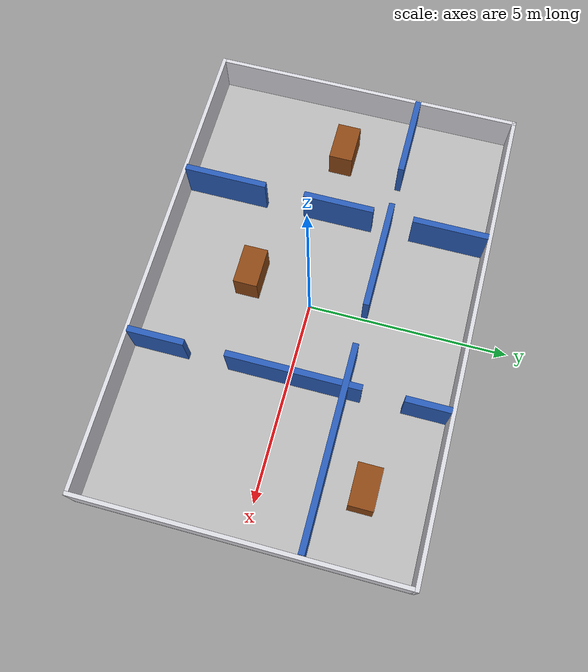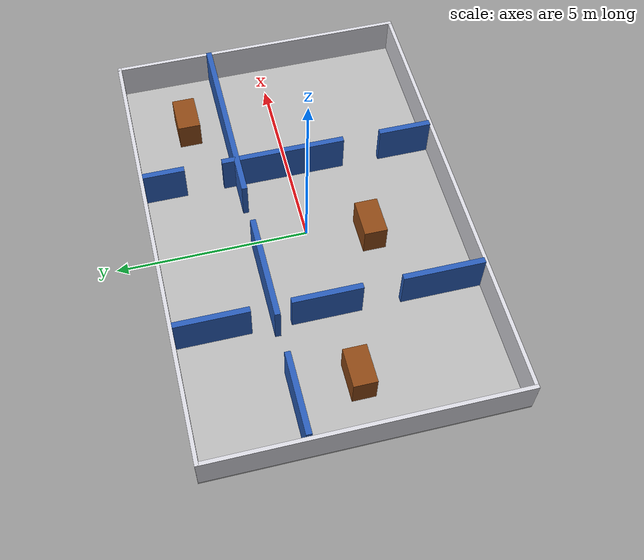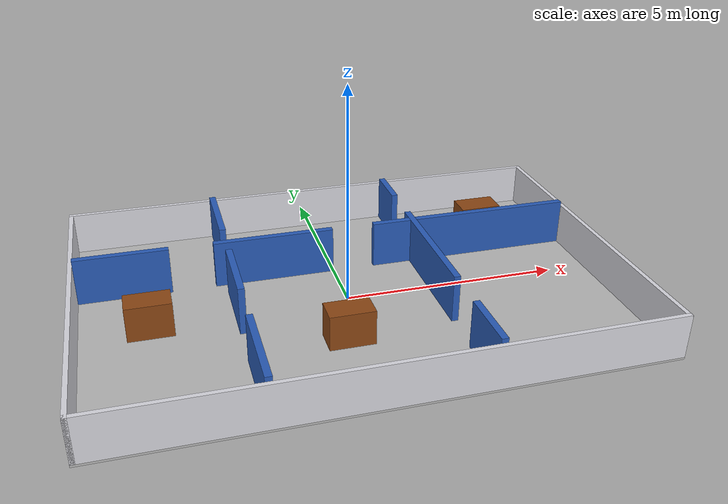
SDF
<?xml version='1.0' encoding='utf-8'?>
<sdf version="1.9">
  <world name="office_maze">
    <physics name="research_physics" type="ode">
      <max_step_size>0.003</max_step_size>
      <real_time_factor>1.0</real_time_factor>
    </physics>
    <plugin filename="gz-sim-physics-system" name="gz::sim::systems::Physics" />
    <plugin filename="gz-sim-user-commands-system" name="gz::sim::systems::UserCommands" />
    <plugin filename="gz-sim-scene-broadcaster-system" name="gz::sim::systems::SceneBroadcaster" />
    <plugin filename="gz-sim-imu-system" name="gz::sim::systems::Imu" />
    <plugin filename="gz-sim-sensors-system" name="gz::sim::systems::Sensors">
      <render_engine>ogre2</render_engine>
    </plugin>
    <scene>
      <ambient>0.8 0.8 0.8 1</ambient>
      <background>0.18 0.22 0.28 1</background>
      <shadows>false</shadows>
      <grid>true</grid>
    </scene>
    <light name="sun" type="directional">
      <pose>0 0 10 0 0 0</pose>
      <diffuse>0.9 0.9 0.9 1</diffuse>
      <specular>0.2 0.2 0.2 1</specular>
      <direction>-0.5 0.2 -1.0</direction>
    </light>
    <model name="office_maze_layout">
      <static>true</static>
      <link name="layout_link">
        <collision name="floor_collision">
          <pose>0 0 -0.025 0 0 0</pose>
          <geometry>
            <box>
              <size>12.0 8.0 0.05</size>
            </box>
          </geometry>
        </collision>
        <visual name="floor_visual">
          <pose>0 0 -0.025 0 0 0</pose>
          <geometry>
            <box>
              <size>12.0 8.0 0.05</size>
            </box>
          </geometry>
          <material>
            <ambient>0.72 0.72 0.72 1</ambient>
            <diffuse>0.72 0.72 0.72 1</diffuse>
          </material>
        </visual>
        <collision name="boundary_north">
          <pose>0.0 3.95 0.5 0 0 0</pose>
          <geometry>
            <box>
              <size>12.0 0.1 1.0</size>
            </box>
          </geometry>
        </collision>
        <visual name="boundary_north_visual">
          <pose>0.0 3.95 0.5 0 0 0</pose>
          <geometry>
            <box>
              <size>12.0 0.1 1.0</size>
            </box>
          </geometry>
          <material>
            <ambient>0.85 0.85 0.88 1</ambient>
            <diffuse>0.85 0.85 0.88 1</diffuse>
          </material>
        </visual>
        <collision name="boundary_south">
          <pose>0.0 -3.95 0.5 0 0 0</pose>
          <geometry>
            <box>
              <size>12.0 0.1 1.0</size>
            </box>
          </geometry>
        </collision>
        <visual name="boundary_south_visual">
          <pose>0.0 -3.95 0.5 0 0 0</pose>
          <geometry>
            <box>
              <size>12.0 0.1 1.0</size>
            </box>
          </geometry>
          <material>
            <ambient>0.85 0.85 0.88 1</ambient>
            <diffuse>0.85 0.85 0.88 1</diffuse>
          </material>
        </visual>
        <collision name="boundary_west">
          <pose>-5.95 0.0 0.5 0 0 0</pose>
          <geometry>
            <box>
              <size>0.1 8.0 1.0</size>
            </box>
          </geometry>
        </collision>
        <visual name="boundary_west_visual">
          <pose>-5.95 0.0 0.5 0 0 0</pose>
          <geometry>
            <box>
              <size>0.1 8.0 1.0</size>
            </box>
          </geometry>
          <material>
            <ambient>0.85 0.85 0.88 1</ambient>
            <diffuse>0.85 0.85 0.88 1</diffuse>
          </material>
        </visual>
        <collision name="boundary_east">
          <pose>5.95 0.0 0.5 0 0 0</pose>
          <geometry>
            <box>
              <size>0.1 8.0 1.0</size>
            </box>
          </geometry>
        </collision>
        <visual name="boundary_east_visual">
          <pose>5.95 0.0 0.5 0 0 0</pose>
          <geometry>
            <box>
              <size>0.1 8.0 1.0</size>
            </box>
          </geometry>
          <material>
            <ambient>0.85 0.85 0.88 1</ambient>
            <diffuse>0.85 0.85 0.88 1</diffuse>
          </material>
        </visual>
        <collision name="west_partition_south">
          <pose>-2.5 -2.85 0.55 0 0 0</pose>
          <geometry>
            <box>
              <size>0.15 2.1 1.1</size>
            </box>
          </geometry>
        </collision>
        <visual name="west_partition_south_visual">
          <pose>-2.5 -2.85 0.55 0 0 0</pose>
          <geometry>
            <box>
              <size>0.15 2.1 1.1</size>
            </box>
          </geometry>
          <material>
            <ambient>0.16 0.36 0.72 1</ambient>
            <diffuse>0.16 0.36 0.72 1</diffuse>
          </material>
        </visual>
        <collision name="west_partition_middle">
          <pose>-2.5 0.1 0.55 0 0 0</pose>
          <geometry>
            <box>
              <size>0.15 1.8 1.1</size>
            </box>
          </geometry>
        </collision>
        <visual name="west_partition_middle_visual">
          <pose>-2.5 0.1 0.55 0 0 0</pose>
          <geometry>
            <box>
              <size>0.15 1.8 1.1</size>
            </box>
          </geometry>
          <material>
            <ambient>0.16 0.36 0.72 1</ambient>
            <diffuse>0.16 0.36 0.72 1</diffuse>
          </material>
        </visual>
        <collision name="west_partition_north">
          <pose>-2.5 2.95 0.55 0 0 0</pose>
          <geometry>
            <box>
              <size>0.15 1.9 1.1</size>
            </box>
          </geometry>
        </collision>
        <visual name="west_partition_north_visual">
          <pose>-2.5 2.95 0.55 0 0 0</pose>
          <geometry>
            <box>
              <size>0.15 1.9 1.1</size>
            </box>
          </geometry>
          <material>
            <ambient>0.16 0.36 0.72 1</ambient>
            <diffuse>0.16 0.36 0.72 1</diffuse>
          </material>
        </visual>
        <collision name="east_partition_south">
          <pose>2.0 -3.2 0.55 0 0 0</pose>
          <geometry>
            <box>
              <size>0.15 1.4 1.1</size>
            </box>
          </geometry>
        </collision>
        <visual name="east_partition_south_visual">
          <pose>2.0 -3.2 0.55 0 0 0</pose>
          <geometry>
            <box>
              <size>0.15 1.4 1.1</size>
            </box>
          </geometry>
          <material>
            <ambient>0.16 0.36 0.72 1</ambient>
            <diffuse>0.16 0.36 0.72 1</diffuse>
          </material>
        </visual>
        <collision name="east_partition_middle">
          <pose>2.0 0.15 0.55 0 0 0</pose>
          <geometry>
            <box>
              <size>0.15 3.3 1.1</size>
            </box>
          </geometry>
        </collision>
        <visual name="east_partition_middle_visual">
          <pose>2.0 0.15 0.55 0 0 0</pose>
          <geometry>
            <box>
              <size>0.15 3.3 1.1</size>
            </box>
          </geometry>
          <material>
            <ambient>0.16 0.36 0.72 1</ambient>
            <diffuse>0.16 0.36 0.72 1</diffuse>
          </material>
        </visual>
        <collision name="east_partition_north">
          <pose>2.0 3.35 0.55 0 0 0</pose>
          <geometry>
            <box>
              <size>0.15 1.1 1.1</size>
            </box>
          </geometry>
        </collision>
        <visual name="east_partition_north_visual">
          <pose>2.0 3.35 0.55 0 0 0</pose>
          <geometry>
            <box>
              <size>0.15 1.1 1.1</size>
            </box>
          </geometry>
          <material>
            <ambient>0.16 0.36 0.72 1</ambient>
            <diffuse>0.16 0.36 0.72 1</diffuse>
          </material>
        </visual>
        <collision name="north_office_wall_west">
          <pose>-4.85 1.4 0.55 0 0 0</pose>
          <geometry>
            <box>
              <size>2.1 0.15 1.1</size>
            </box>
          </geometry>
        </collision>
        <visual name="north_office_wall_west_visual">
          <pose>-4.85 1.4 0.55 0 0 0</pose>
          <geometry>
            <box>
              <size>2.1 0.15 1.1</size>
            </box>
          </geometry>
          <material>
            <ambient>0.16 0.36 0.72 1</ambient>
            <diffuse>0.16 0.36 0.72 1</diffuse>
          </material>
        </visual>
        <collision name="north_office_wall_center">
          <pose>-1.4 1.4 0.55 0 0 0</pose>
          <geometry>
            <box>
              <size>2.8 0.15 1.1</size>
            </box>
          </geometry>
        </collision>
        <visual name="north_office_wall_center_visual">
          <pose>-1.4 1.4 0.55 0 0 0</pose>
          <geometry>
            <box>
              <size>2.8 0.15 1.1</size>
            </box>
          </geometry>
          <material>
            <ambient>0.16 0.36 0.72 1</ambient>
            <diffuse>0.16 0.36 0.72 1</diffuse>
          </material>
        </visual>
        <collision name="north_office_wall_east">
          <pose>3.45 1.4 0.55 0 0 0</pose>
          <geometry>
            <box>
              <size>4.9 0.15 1.1</size>
            </box>
          </geometry>
        </collision>
        <visual name="north_office_wall_east_visual">
          <pose>3.45 1.4 0.55 0 0 0</pose>
          <geometry>
            <box>
              <size>4.9 0.15 1.1</size>
            </box>
          </geometry>
          <material>
            <ambient>0.16 0.36 0.72 1</ambient>
            <diffuse>0.16 0.36 0.72 1</diffuse>
          </material>
        </visual>
        <collision name="desk_west">
          <pose>-4.4 -0.2 0.4 0 0 0</pose>
          <geometry>
            <box>
              <size>1.0 0.6 0.8</size>
            </box>
          </geometry>
        </collision>
        <visual name="desk_west_visual">
          <pose>-4.4 -0.2 0.4 0 0 0</pose>
          <geometry>
            <box>
              <size>1.0 0.6 0.8</size>
            </box>
          </geometry>
          <material>
            <ambient>0.55 0.28 0.08 1</ambient>
            <diffuse>0.55 0.28 0.08 1</diffuse>
          </material>
        </visual>
        <collision name="desk_center">
          <pose>-0.4 -1.6 0.4 0 0 0</pose>
          <geometry>
            <box>
              <size>1.0 0.6 0.8</size>
            </box>
          </geometry>
        </collision>
        <visual name="desk_center_visual">
          <pose>-0.4 -1.6 0.4 0 0 0</pose>
          <geometry>
            <box>
              <size>1.0 0.6 0.8</size>
            </box>
          </geometry>
          <material>
            <ambient>0.55 0.28 0.08 1</ambient>
            <diffuse>0.55 0.28 0.08 1</diffuse>
          </material>
        </visual>
        <collision name="desk_east">
          <pose>4.1 2.4 0.4 0 0 0</pose>
          <geometry>
            <box>
              <size>1.0 0.6 0.8</size>
            </box>
          </geometry>
        </collision>
        <visual name="desk_east_visual">
          <pose>4.1 2.4 0.4 0 0 0</pose>
          <geometry>
            <box>
              <size>1.0 0.6 0.8</size>
            </box>
          </geometry>
          <material>
            <ambient>0.55 0.28 0.08 1</ambient>
            <diffuse>0.55 0.28 0.08 1</diffuse>
          </material>
        </visual>
      </link>
    </model>
  </world>
</sdf>
